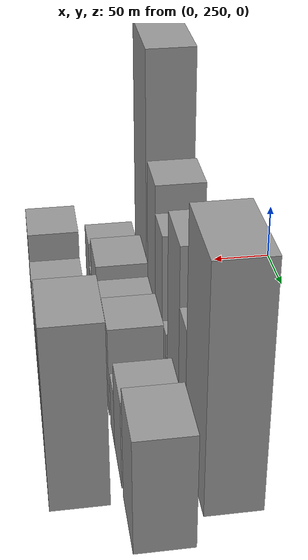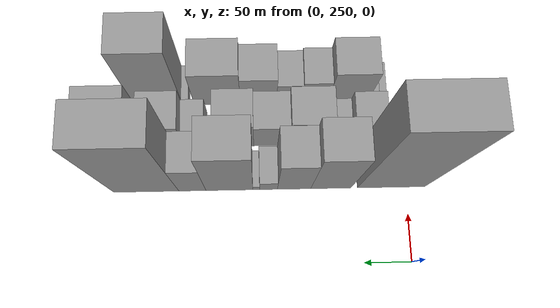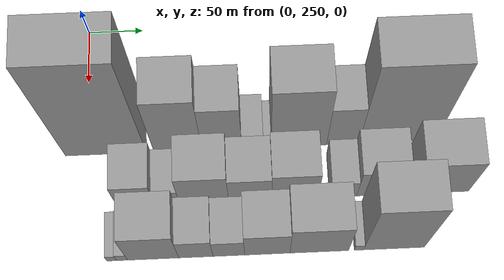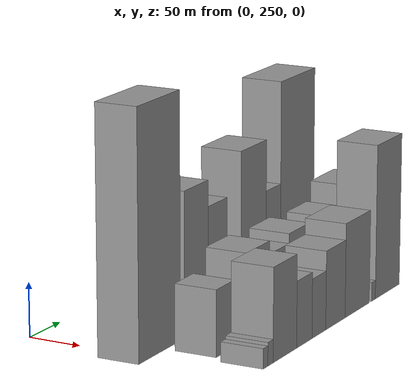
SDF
<sdf version="1.6">
 <world name="default">
  <model name="building_21">
   <static>1</static>
   <pose>100.0000 266.0082 0 0.000000 0.000000 0.000000</pose>
   <link name="link">
    <pose>0 0 111.00 0 0 0</pose>
    <collision name="collision"><geometry><box><size>40.0000 73.3279 222.0000</size></box></geometry></collision>
    <visual name="visual">
     <cast_shadows>0</cast_shadows>
     <geometry><box><size>40.0000 73.3279 222.0000</size></box></geometry>
     <material>
      <script>
       <uri>model://grey_wall/materials/scripts</uri>
       <uri>model://grey_wall/materials/textures</uri>
       <name>vrc/grey_wall</name>
      </script>
     </material>
    </visual>
   </link>
  </model>
  <model name="building_22">
   <static>1</static>
   <pose>100.0000 331.4703 0 0.000000 0.000000 0.000000</pose>
   <link name="link">
    <pose>0 0 66.00 0 0 0</pose>
    <collision name="collision"><geometry><box><size>40.0000 43.5963 132.0000</size></box></geometry></collision>
    <visual name="visual">
     <cast_shadows>0</cast_shadows>
     <geometry><box><size>40.0000 43.5963 132.0000</size></box></geometry>
     <material>
      <script>
       <uri>model://grey_wall/materials/scripts</uri>
       <uri>model://grey_wall/materials/textures</uri>
       <name>vrc/grey_wall</name>
      </script>
     </material>
    </visual>
   </link>
  </model>
  <model name="building_23">
   <static>1</static>
   <pose>100.0000 371.3016 0 0.000000 0.000000 0.000000</pose>
   <link name="link">
    <pose>0 0 54.00 0 0 0</pose>
    <collision name="collision"><geometry><box><size>40.0000 36.0664 108.0000</size></box></geometry></collision>
    <visual name="visual">
     <cast_shadows>0</cast_shadows>
     <geometry><box><size>40.0000 36.0664 108.0000</size></box></geometry>
     <material>
      <script>
       <uri>model://grey_wall/materials/scripts</uri>
       <uri>model://grey_wall/materials/textures</uri>
       <name>vrc/grey_wall</name>
      </script>
     </material>
    </visual>
   </link>
  </model>
  <model name="building_24">
   <static>1</static>
   <pose>100.0000 399.0295 0 0.000000 0.000000 0.000000</pose>
   <link name="link">
    <pose>0 0 16.50 0 0 0</pose>
    <collision name="collision"><geometry><box><size>40.0000 19.3893 33.0000</size></box></geometry></collision>
    <visual name="visual">
     <cast_shadows>0</cast_shadows>
     <geometry><box><size>40.0000 19.3893 33.0000</size></box></geometry>
     <material>
      <script>
       <uri>model://grey_wall/materials/scripts</uri>
       <uri>model://grey_wall/materials/textures</uri>
       <name>vrc/grey_wall</name>
      </script>
     </material>
    </visual>
   </link>
  </model>
  <model name="building_25">
   <static>1</static>
   <pose>100.0000 412.3815 0 0.000000 0.000000 0.000000</pose>
   <link name="link">
    <pose>0 0 7.50 0 0 0</pose>
    <collision name="collision"><geometry><box><size>40.0000 7.3146 15.0000</size></box></geometry></collision>
    <visual name="visual">
     <cast_shadows>0</cast_shadows>
     <geometry><box><size>40.0000 7.3146 15.0000</size></box></geometry>
     <material>
      <script>
       <uri>model://grey_wall/materials/scripts</uri>
       <uri>model://grey_wall/materials/textures</uri>
       <name>vrc/grey_wall</name>
      </script>
     </material>
    </visual>
   </link>
  </model>
  <model name="building_26">
   <static>1</static>
   <pose>100.0000 441.1914 0 0.000000 0.000000 0.000000</pose>
   <link name="link">
    <pose>0 0 72.00 0 0 0</pose>
    <collision name="collision"><geometry><box><size>40.0000 50.3052 144.0000</size></box></geometry></collision>
    <visual name="visual">
     <cast_shadows>0</cast_shadows>
     <geometry><box><size>40.0000 50.3052 144.0000</size></box></geometry>
     <material>
      <script>
       <uri>model://grey_wall/materials/scripts</uri>
       <uri>model://grey_wall/materials/textures</uri>
       <name>vrc/grey_wall</name>
      </script>
     </material>
    </visual>
   </link>
  </model>
  <model name="building_27">
   <static>1</static>
   <pose>100.0000 481.0401 0 0.000000 0.000000 0.000000</pose>
   <link name="link">
    <pose>0 0 48.00 0 0 0</pose>
    <collision name="collision"><geometry><box><size>40.0000 29.3922 96.0000</size></box></geometry></collision>
    <visual name="visual">
     <cast_shadows>0</cast_shadows>
     <geometry><box><size>40.0000 29.3922 96.0000</size></box></geometry>
     <material>
      <script>
       <uri>model://grey_wall/materials/scripts</uri>
       <uri>model://grey_wall/materials/textures</uri>
       <name>vrc/grey_wall</name>
      </script>
     </material>
    </visual>
   </link>
  </model>
  <model name="building_28">
   <static>1</static>
   <pose>100.0000 530.9056 0 0.000000 0.000000 0.000000</pose>
   <link name="link">
    <pose>0 0 96.00 0 0 0</pose>
    <collision name="collision"><geometry><box><size>40.0000 70.3389 192.0000</size></box></geometry></collision>
    <visual name="visual">
     <cast_shadows>0</cast_shadows>
     <geometry><box><size>40.0000 70.3389 192.0000</size></box></geometry>
     <material>
      <script>
       <uri>model://grey_wall/materials/scripts</uri>
       <uri>model://grey_wall/materials/textures</uri>
       <name>vrc/grey_wall</name>
      </script>
     </material>
    </visual>
   </link>
  </model>
  <model name="building_55">
   <static>1</static>
   <pose>149.0000 292.8190 0 0.000000 0.000000 0.000000</pose>
   <link name="link">
    <pose>0 0 30.00 0 0 0</pose>
    <collision name="collision"><geometry><box><size>40.0000 33.5747 60.0000</size></box></geometry></collision>
    <visual name="visual">
     <cast_shadows>0</cast_shadows>
     <geometry><box><size>40.0000 33.5747 60.0000</size></box></geometry>
     <material>
      <script>
       <uri>model://grey_wall/materials/scripts</uri>
       <uri>model://grey_wall/materials/textures</uri>
       <name>vrc/grey_wall</name>
      </script>
     </material>
    </visual>
   </link>
  </model>
  <model name="building_56">
   <static>1</static>
   <pose>149.0000 320.6605 0 0.000000 0.000000 0.000000</pose>
   <link name="link">
    <pose>0 0 19.50 0 0 0</pose>
    <collision name="collision"><geometry><box><size>40.0000 22.1084 39.0000</size></box></geometry></collision>
    <visual name="visual">
     <cast_shadows>0</cast_shadows>
     <geometry><box><size>40.0000 22.1084 39.0000</size></box></geometry>
     <material>
      <script>
       <uri>model://grey_wall/materials/scripts</uri>
       <uri>model://grey_wall/materials/textures</uri>
       <name>vrc/grey_wall</name>
      </script>
     </material>
    </visual>
   </link>
  </model>
  <model name="building_57">
   <static>1</static>
   <pose>149.0000 353.8151 0 0.000000 0.000000 0.000000</pose>
   <link name="link">
    <pose>0 0 39.00 0 0 0</pose>
    <collision name="collision"><geometry><box><size>40.0000 44.2007 78.0000</size></box></geometry></collision>
    <visual name="visual">
     <cast_shadows>0</cast_shadows>
     <geometry><box><size>40.0000 44.2007 78.0000</size></box></geometry>
     <material>
      <script>
       <uri>model://grey_wall/materials/scripts</uri>
       <uri>model://grey_wall/materials/textures</uri>
       <name>vrc/grey_wall</name>
      </script>
     </material>
    </visual>
   </link>
  </model>
  <model name="building_58">
   <static>1</static>
   <pose>149.0000 395.0756 0 0.000000 0.000000 0.000000</pose>
   <link name="link">
    <pose>0 0 33.00 0 0 0</pose>
    <collision name="collision"><geometry><box><size>40.0000 38.3203 66.0000</size></box></geometry></collision>
    <visual name="visual">
     <cast_shadows>0</cast_shadows>
     <geometry><box><size>40.0000 38.3203 66.0000</size></box></geometry>
     <material>
      <script>
       <uri>model://grey_wall/materials/scripts</uri>
       <uri>model://grey_wall/materials/textures</uri>
       <name>vrc/grey_wall</name>
      </script>
     </material>
    </visual>
   </link>
  </model>
  <model name="building_59">
   <static>1</static>
   <pose>149.0000 435.0544 0 0.000000 0.000000 0.000000</pose>
   <link name="link">
    <pose>0 0 37.50 0 0 0</pose>
    <collision name="collision"><geometry><box><size>40.0000 41.6372 75.0000</size></box></geometry></collision>
    <visual name="visual">
     <cast_shadows>0</cast_shadows>
     <geometry><box><size>40.0000 41.6372 75.0000</size></box></geometry>
     <material>
      <script>
       <uri>model://grey_wall/materials/scripts</uri>
       <uri>model://grey_wall/materials/textures</uri>
       <name>vrc/grey_wall</name>
      </script>
     </material>
    </visual>
   </link>
  </model>
  <model name="building_60">
   <static>1</static>
   <pose>149.0000 478.0425 0 0.000000 0.000000 0.000000</pose>
   <link name="link">
    <pose>0 0 22.50 0 0 0</pose>
    <collision name="collision"><geometry><box><size>40.0000 24.3391 45.0000</size></box></geometry></collision>
    <visual name="visual">
     <cast_shadows>0</cast_shadows>
     <geometry><box><size>40.0000 24.3391 45.0000</size></box></geometry>
     <material>
      <script>
       <uri>model://grey_wall/materials/scripts</uri>
       <uri>model://grey_wall/materials/textures</uri>
       <name>vrc/grey_wall</name>
      </script>
     </material>
    </visual>
   </link>
  </model>
  <model name="building_61">
   <static>1</static>
   <pose>149.0000 511.3003 0 0.000000 0.000000 0.000000</pose>
   <link name="link">
    <pose>0 0 36.00 0 0 0</pose>
    <collision name="collision"><geometry><box><size>40.0000 42.1766 72.0000</size></box></geometry></collision>
    <visual name="visual">
     <cast_shadows>0</cast_shadows>
     <geometry><box><size>40.0000 42.1766 72.0000</size></box></geometry>
     <material>
      <script>
       <uri>model://grey_wall/materials/scripts</uri>
       <uri>model://grey_wall/materials/textures</uri>
       <name>vrc/grey_wall</name>
      </script>
     </material>
    </visual>
   </link>
  </model>
  <model name="building_62">
   <static>1</static>
   <pose>149.0000 565.7394 0 0.000000 0.000000 0.000000</pose>
   <link name="link">
    <pose>0 0 45.00 0 0 0</pose>
    <collision name="collision"><geometry><box><size>40.0000 50.7016 90.0000</size></box></geometry></collision>
    <visual name="visual">
     <cast_shadows>0</cast_shadows>
     <geometry><box><size>40.0000 50.7016 90.0000</size></box></geometry>
     <material>
      <script>
       <uri>model://grey_wall/materials/scripts</uri>
       <uri>model://grey_wall/materials/textures</uri>
       <name>vrc/grey_wall</name>
      </script>
     </material>
    </visual>
   </link>
  </model>
  <model name="building_89">
   <static>1</static>
   <pose>198.0000 271.3516 0 0.000000 0.000000 0.000000</pose>
   <link name="link">
    <pose>0 0 9.00 0 0 0</pose>
    <collision name="collision"><geometry><box><size>40.0000 8.4758 18.0000</size></box></geometry></collision>
    <visual name="visual">
     <cast_shadows>0</cast_shadows>
     <geometry><box><size>40.0000 8.4758 18.0000</size></box></geometry>
     <material>
      <script>
       <uri>model://grey_wall/materials/scripts</uri>
       <uri>model://grey_wall/materials/textures</uri>
       <name>vrc/grey_wall</name>
      </script>
     </material>
    </visual>
   </link>
  </model>
  <model name="building_90">
   <static>1</static>
   <pose>198.0000 280.4929 0 0.000000 0.000000 0.000000</pose>
   <link name="link">
    <pose>0 0 10.50 0 0 0</pose>
    <collision name="collision"><geometry><box><size>40.0000 9.8068 21.0000</size></box></geometry></collision>
    <visual name="visual">
     <cast_shadows>0</cast_shadows>
     <geometry><box><size>40.0000 9.8068 21.0000</size></box></geometry>
     <material>
      <script>
       <uri>model://grey_wall/materials/scripts</uri>
       <uri>model://grey_wall/materials/textures</uri>
       <name>vrc/grey_wall</name>
      </script>
     </material>
    </visual>
   </link>
  </model>
  <model name="building_91">
   <static>1</static>
   <pose>198.0000 307.8484 0 0.000000 0.000000 0.000000</pose>
   <link name="link">
    <pose>0 0 42.00 0 0 0</pose>
    <collision name="collision"><geometry><box><size>40.0000 44.9043 84.0000</size></box></geometry></collision>
    <visual name="visual">
     <cast_shadows>0</cast_shadows>
     <geometry><box><size>40.0000 44.9043 84.0000</size></box></geometry>
     <material>
      <script>
       <uri>model://grey_wall/materials/scripts</uri>
       <uri>model://grey_wall/materials/textures</uri>
       <name>vrc/grey_wall</name>
      </script>
     </material>
    </visual>
   </link>
  </model>
  <model name="building_92">
   <static>1</static>
   <pose>198.0000 345.3829 0 0.000000 0.000000 0.000000</pose>
   <link name="link">
    <pose>0 0 30.00 0 0 0</pose>
    <collision name="collision"><geometry><box><size>40.0000 30.1647 60.0000</size></box></geometry></collision>
    <visual name="visual">
     <cast_shadows>0</cast_shadows>
     <geometry><box><size>40.0000 30.1647 60.0000</size></box></geometry>
     <material>
      <script>
       <uri>model://grey_wall/materials/scripts</uri>
       <uri>model://grey_wall/materials/textures</uri>
       <name>vrc/grey_wall</name>
      </script>
     </material>
    </visual>
   </link>
  </model>
  <model name="building_93">
   <static>1</static>
   <pose>198.0000 374.3381 0 0.000000 0.000000 0.000000</pose>
   <link name="link">
    <pose>0 0 27.00 0 0 0</pose>
    <collision name="collision"><geometry><box><size>40.0000 27.7456 54.0000</size></box></geometry></collision>
    <visual name="visual">
     <cast_shadows>0</cast_shadows>
     <geometry><box><size>40.0000 27.7456 54.0000</size></box></geometry>
     <material>
      <script>
       <uri>model://grey_wall/materials/scripts</uri>
       <uri>model://grey_wall/materials/textures</uri>
       <name>vrc/grey_wall</name>
      </script>
     </material>
    </visual>
   </link>
  </model>
  <model name="building_94">
   <static>1</static>
   <pose>198.0000 408.1653 0 0.000000 0.000000 0.000000</pose>
   <link name="link">
    <pose>0 0 36.00 0 0 0</pose>
    <collision name="collision"><geometry><box><size>40.0000 39.9089 72.0000</size></box></geometry></collision>
    <visual name="visual">
     <cast_shadows>0</cast_shadows>
     <geometry><box><size>40.0000 39.9089 72.0000</size></box></geometry>
     <material>
      <script>
       <uri>model://grey_wall/materials/scripts</uri>
       <uri>model://grey_wall/materials/textures</uri>
       <name>vrc/grey_wall</name>
      </script>
     </material>
    </visual>
   </link>
  </model>
  <model name="building_95">
   <static>1</static>
   <pose>198.0000 453.9884 0 0.000000 0.000000 0.000000</pose>
   <link name="link">
    <pose>0 0 43.50 0 0 0</pose>
    <collision name="collision"><geometry><box><size>40.0000 51.7373 87.0000</size></box></geometry></collision>
    <visual name="visual">
     <cast_shadows>0</cast_shadows>
     <geometry><box><size>40.0000 51.7373 87.0000</size></box></geometry>
     <material>
      <script>
       <uri>model://grey_wall/materials/scripts</uri>
       <uri>model://grey_wall/materials/textures</uri>
       <name>vrc/grey_wall</name>
      </script>
     </material>
    </visual>
   </link>
  </model>
  <model name="building_96">
   <static>1</static>
   <pose>198.0000 488.9360 0 0.000000 0.000000 0.000000</pose>
   <link name="link">
    <pose>0 0 9.00 0 0 0</pose>
    <collision name="collision"><geometry><box><size>40.0000 8.1578 18.0000</size></box></geometry></collision>
    <visual name="visual">
     <cast_shadows>0</cast_shadows>
     <geometry><box><size>40.0000 8.1578 18.0000</size></box></geometry>
     <material>
      <script>
       <uri>model://grey_wall/materials/scripts</uri>
       <uri>model://grey_wall/materials/textures</uri>
       <name>vrc/grey_wall</name>
      </script>
     </material>
    </visual>
   </link>
  </model>
  <model name="building_97">
   <static>1</static>
   <pose>198.0000 519.9039 0 0.000000 0.000000 0.000000</pose>
   <link name="link">
    <pose>0 0 72.00 0 0 0</pose>
    <collision name="collision"><geometry><box><size>40.0000 53.7779 144.0000</size></box></geometry></collision>
    <visual name="visual">
     <cast_shadows>0</cast_shadows>
     <geometry><box><size>40.0000 53.7779 144.0000</size></box></geometry>
     <material>
      <script>
       <uri>model://grey_wall/materials/scripts</uri>
       <uri>model://grey_wall/materials/textures</uri>
       <name>vrc/grey_wall</name>
      </script>
     </material>
    </visual>
   </link>
  </model>
 </world>
</sdf>
